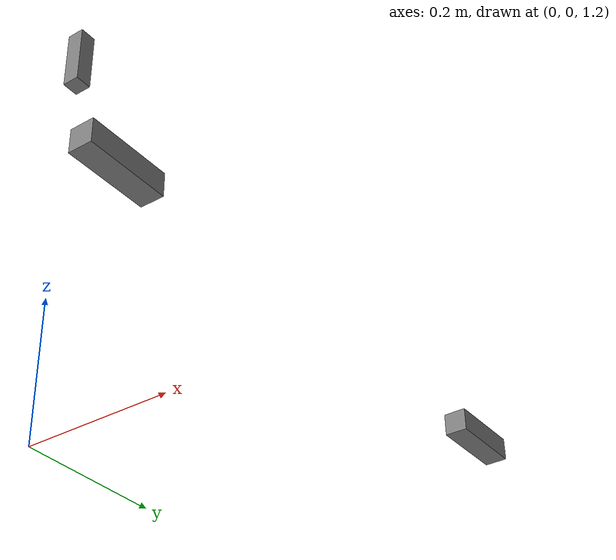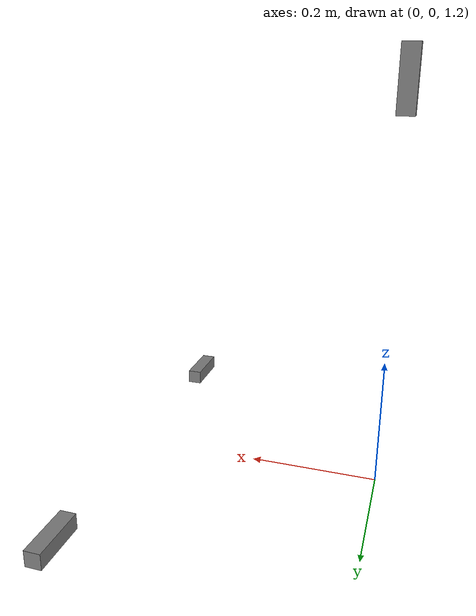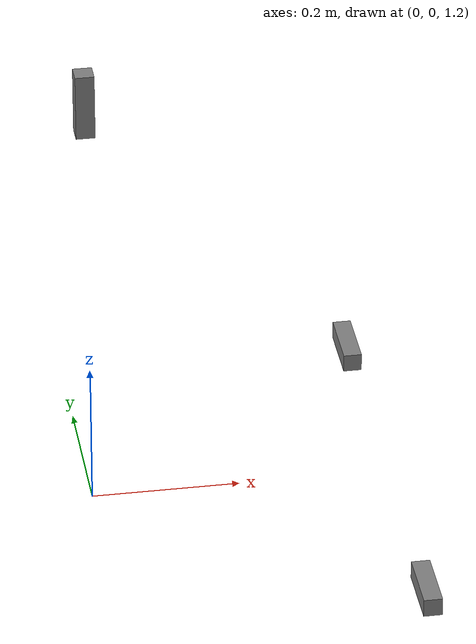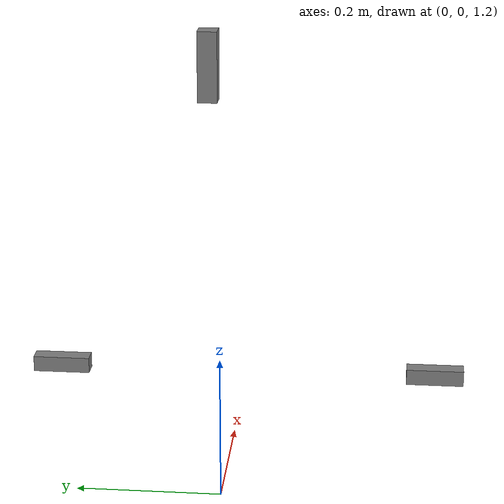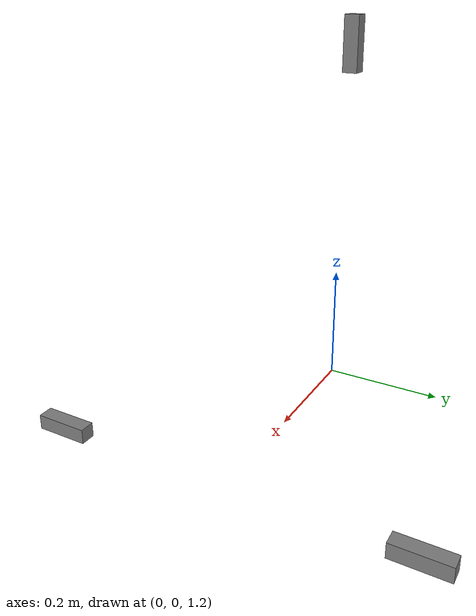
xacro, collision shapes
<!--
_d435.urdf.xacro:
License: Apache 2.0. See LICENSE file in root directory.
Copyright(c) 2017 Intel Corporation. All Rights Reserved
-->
<?xml version="1.0"?>
<robot xmlns:xacro="http://www.ros.org/wiki/xacro" name="triple_camera_set">

  <!-- Swallow extra args that the launch passes -->
  <xacro:arg name="use_nominal_extrinsics" default="true"/>
  <xacro:arg name="publish_pointcloud"     default="false"/>
  <xacro:arg name="add_plug"               default="false"/>

  <!-- Provide a root so joints can attach to "world" -->
  <link name="world"/>

  <!-- Realsense D435 macro -->
  <xacro:include filename="$(find realsense_gazebo_description)/urdf/_d435.urdf.xacro"/>

  <!-- LEFT camera -->
  <xacro:sensor_d435 parent="world" name="camera_left" topics_ns="camera_left">
    <origin xyz="0.4 0.3 1.2" rpy="0 0 0"/>
  </xacro:sensor_d435>

  <!-- RIGHT camera -->
  <xacro:sensor_d435 parent="world" name="camera_right" topics_ns="camera_right">
    <origin xyz="0.4 -0.3 1.2" rpy="0 0 0"/>
  </xacro:sensor_d435>

  <!-- TOP camera (looking down) -->
  <xacro:sensor_d435 parent="world" name="camera_top" topics_ns="camera_top">
    <origin xyz="0.0 0.0 1.8" rpy="-1.57 0 0"/>
  </xacro:sensor_d435>

</robot>

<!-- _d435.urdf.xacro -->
<robot name="sensor_d435" xmlns:xacro="http://ros.org/wiki/xacro">
  <!--File includes-->
  <xacro:include filename="$(find realsense_gazebo_description)/urdf/_d435.gazebo.xacro"/>

  <xacro:macro name="sensor_d435" params="parent
                                          name:=camera
                                          topics_ns:=camera
                                          align_depth:=false
                                          enable_pointCloud:=false

                                          clip_distance:=-1.0
                                          depth_width:=1280
                                          depth_height:=720
                                          depth_fps:=30

                                          infra_width:=640
                                          infra_height:=480
                                          infra_fps:=30

                                          color_width:=1920
                                          color_height:=1080
                                          color_fps:=30

                                          visualize:=false
                                          *origin">
    <xacro:property name="M_PI" value="3.1415926535897931"/>

    <!-- The following values are approximate, and the camera node
     publishing TF values with actual calibrated camera extrinsic values -->
    <xacro:property name="d435_cam_depth_to_left_ir_offset" value="0.0"/>
    <xacro:property name="d435_cam_depth_to_right_ir_offset" value="-0.050"/>
    <xacro:property name="d435_cam_depth_to_color_offset" value="0.015"/>

    <!-- The following values model the aluminum peripherial case for the
  	D435 camera, with the camera joint represented by the actual
  	peripherial camera tripod mount -->
    <xacro:property name="d435_cam_width" value="0.090"/>
    <xacro:property name="d435_cam_height" value="0.025"/>
    <xacro:property name="d435_cam_depth" value="0.02505"/>
    <xacro:property name="d435_cam_mount_from_center_offset" value="0.0149"/>

    <!-- The following offset is relative the the physical D435 camera peripherial
  	camera tripod mount -->
    <xacro:property name="d435_cam_depth_px" value="${d435_cam_mount_from_center_offset}"/>
    <xacro:property name="d435_cam_depth_py" value="0.0175"/>
    <xacro:property name="d435_cam_depth_pz" value="${d435_cam_height/2}"/>

    <material name="${name}_aluminum">
	  <color rgba="0.5 0.5 0.5 1"/>
    </material>

    <!-- camera body, with origin at bottom screw mount -->
    <joint name="${name}_joint" type="fixed">
      <xacro:insert_block name="origin"/>
      <parent link="${parent}"/>
      <child link="${name}_bottom_screw_frame"/>
    </joint>
    <link name="${name}_bottom_screw_frame"/>

    <joint name="${name}_link_joint" type="fixed">
      <origin xyz="0 ${d435_cam_depth_py} ${d435_cam_depth_pz}" rpy="0 0 0"/>
      <parent link="${name}_bottom_screw_frame"/>
      <child link="${name}_link"/>
    </joint>

    <link name="${name}_link">
      <visual>
      <origin xyz="${d435_cam_mount_from_center_offset} ${-d435_cam_depth_py} 0" rpy="${M_PI/2} 0 ${M_PI/2}"/>
        <geometry>
          <mesh filename="package://realsense2_description/meshes/d435.dae"/>
        </geometry>
        <material name="${name}_aluminum"/>
      </visual>
      <collision>
        <origin xyz="0 ${-d435_cam_depth_py} 0" rpy="0 0 0"/>
        <geometry>
        <box size="${d435_cam_depth} ${d435_cam_width} ${d435_cam_height}"/>
        </geometry>
      </collision>
      <inertial>
        <!-- The following are not reliable values, and should not be used for modeling -->
        <mass value="0.564"/>
        <origin xyz="0 0 0"/>
        <inertia ixx="0.003881243" ixy="0.0" ixz="0.0" iyy="0.000498940" iyz="0.0" izz="0.003879257"/>
      </inertial>
    </link>

    <!-- camera depth joints and links -->
    <joint name="${name}_depth_joint" type="fixed">
      <origin xyz="0 0 0" rpy="0 0 0"/>
      <parent link="${name}_link"/>
      <child link="${name}_depth_frame"/>
    </joint>
    <link name="${name}_depth_frame"/>

    <joint name="${name}_depth_optical_joint" type="fixed">
      <origin xyz="0 0 0" rpy="${-M_PI/2} 0 ${-M_PI/2}"/>
      <parent link="${name}_depth_frame"/>
      <child link="${name}_depth_optical_frame"/>
    </joint>
    <link name="${name}_depth_optical_frame"/>

    <!-- camera left IR joints and links -->
    <joint name="${name}_left_ir_joint" type="fixed">
      <origin xyz="0 ${d435_cam_depth_to_left_ir_offset} 0" rpy="0 0 0"/>
      <parent link="${name}_depth_frame"/>
      <child link="${name}_left_ir_frame"/>
    </joint>
    <link name="${name}_left_ir_frame"/>

    <joint name="${name}_left_ir_optical_joint" type="fixed">
      <origin xyz="0 0 0" rpy="${-M_PI/2} 0 ${-M_PI/2}"/>
      <parent link="${name}_left_ir_frame"/>
      <child link="${name}_left_ir_optical_frame"/>
    </joint>
    <link name="${name}_left_ir_optical_frame"/>

    <!-- camera right IR joints and links -->
    <joint name="${name}_right_ir_joint" type="fixed">
      <origin xyz="0 ${d435_cam_depth_to_right_ir_offset} 0" rpy="0 0 0"/>
      <parent link="${name}_depth_frame"/>
      <child link="${name}_right_ir_frame"/>
    </joint>
    <link name="${name}_right_ir_frame"/>

    <joint name="${name}_right_ir_optical_joint" type="fixed">
      <origin xyz="0 0 0" rpy="${-M_PI/2} 0 ${-M_PI/2}"/>
      <parent link="${name}_right_ir_frame"/>
      <child link="${name}_right_ir_optical_frame"/>
    </joint>
    <link name="${name}_right_ir_optical_frame"/>

    <!-- camera color joints and links -->
    <joint name="${name}_color_joint" type="fixed">
      <origin xyz="0 ${d435_cam_depth_to_color_offset} 0" rpy="0 0 0"/>
      <parent link="${name}_depth_frame"/>
      <child link="${name}_color_frame"/>
    </joint>
    <link name="${name}_color_frame"/>

    <joint name="${name}_color_optical_joint" type="fixed">
      <origin xyz="0 0 0" rpy="${-M_PI/2} 0 ${-M_PI/2}"/>
      <parent link="${name}_color_frame"/>
      <child link="${name}_color_optical_frame"/>
    </joint>
    <link name="${name}_color_optical_frame"/>

    <!-- Realsense Gazebo Plugin -->
    <xacro:gazebo_d435  camera_name="${name}"
                        topics_ns="${topics_ns}"
                        reference_link="${name}_link"

                        depth_optical_frame="${name}_depth_optical_frame"
                        depth_width="${depth_width}"
                        depth_height="${depth_height}"
                        depth_fps="${depth_fps}"

                        color_optical_frame="${name}_color_optical_frame"
                        color_width="${color_width}"
                        color_height="${color_height}"
                        color_fps="${color_fps}"

                        infrared1_optical_frame="${name}_left_ir_optical_frame"
                        infrared2_optical_frame="${name}_right_ir_optical_frame"
                        infra_width="${infra_width}"
                        infra_height="${infra_height}"
                        infra_fps="${infra_fps}"

                        enable_pointCloud="${enable_pointCloud}"
                        clip_distance="${clip_distance}"
                        align_depth="${align_depth}"
                        visualize="${visualize}"
    />

  </xacro:macro>
</robot>
